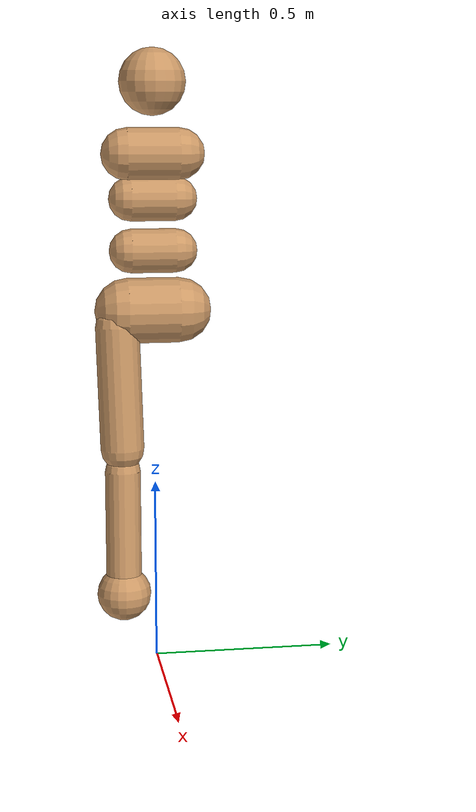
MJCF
<mujoco model="humanoid">
    <compiler angle="degree" inertiafromgeom="true"/>
    <default>
        <joint armature="1" damping="1" limited="true"/>
        <geom conaffinity="1" condim="1" contype="1" margin="0.001" material="geom" rgba="0.8 0.6 .4 1"/>
        <motor ctrllimited="true" ctrlrange="-.4 .4"/>
    </default>
    <option integrator="RK4" iterations="50" solver="PGS" timestep="0.003">
    </option>
    <size nkey="5" nuser_geom="1"/>
    <visual>
        <map fogend="5" fogstart="3"/>
    </visual>
    <asset>
        <texture builtin="gradient" height="100" rgb1=".4 .5 .6" rgb2="0 0 0" type="skybox" width="100"/>
        <texture builtin="flat" height="1278" mark="cross" markrgb="1 1 1" name="texgeom" random="0.01" rgb1="0.8 0.6 0.4" rgb2="0.8 0.6 0.4" type="cube" width="127"/>
        <texture builtin="checker" height="100" name="texplane" rgb1="0 0 0" rgb2="0.8 0.8 0.8" type="2d" width="100"/>
        <material name="MatPlane" reflectance="0.5" shininess="1" specular="1" texrepeat="60 60" texture="texplane"/>
        <material name="geom" texture="texgeom" texuniform="true"/>
    </asset>
    <worldbody>
        <light cutoff="100" diffuse="1 1 1" dir="-0 0 -1.3" directional="true" exponent="1" pos="0 0 1.3" specular=".1 .1 .1"/>
        <body name="torso" pos="0 0 1.4">
            <joint armature="0" damping="0" limited="false" name="root" pos="0 0 0" stiffness="0" type="free"/>
            <geom fromto="0 -.07 0 0 .07 0" name="torso1" size="0.07" type="capsule"/>
            <geom name="head" pos="0 0 .19" size=".09" type="sphere" user="258"/>
            <geom fromto="-.01 -.06 -.12 -.01 .06 -.12" name="uwaist" size="0.06" type="capsule"/>            <body name="lwaist" pos="-.01 0 -0.260" quat="1.000 0 -0.002 0">
                <joint armature="0.02" axis="0 0 1" damping="5" name="abdomen_z" pos="0 0 0.065" range="-45 45" stiffness="20" type="hinge"/>
                <joint armature="0.02" axis="0 1 0" damping="5" name="abdomen_y" pos="0 0 0.065" range="-75 30" stiffness="10" type="hinge"/>
                <geom fromto="0 -.06 0 0 .06 0" name="lwaist" size="0.06" type="capsule"/>
                <body name="pelvis" pos="0 0 -0.165" quat="1.000 0 -0.002 0">
                    <joint armature="0.02" axis="1 0 0" damping="5" name="abdomen_x" pos="0 0 0.1" range="-35 35" stiffness="10" type="hinge"/>
                    <geom fromto="-.02 -.07 0 -.02 .07 0" name="butt" size="0.09" type="capsule"/>
                    <body name="right_thigh" pos="0 -0.1 -0.04">
                        <joint armature="0.01" axis="1 0 0" damping="5" name="right_hip_x" pos="0 0 0" range="-25 5" stiffness="10" type="hinge"/>
                        <joint armature="0.01" axis="0 0 1" damping="5" name="right_hip_z" pos="0 0 0" range="-60 35" stiffness="10" type="hinge"/>
                        <joint armature="0.0080" axis="0 1 0" damping="5" name="right_hip_y" pos="0 0 0" range="-110 20" stiffness="20" type="hinge"/>
                        <geom fromto="0 0 0 0 0.01 -.34" name="right_thigh1" size="0.06" type="capsule"/>
                        <body name="right_shin" pos="0 0.01 -0.403">
                            <joint armature="0.0060" axis="0 -1 0" name="right_knee" pos="0 0 .02" range="-160 -2" type="hinge"/>
                            <geom fromto="0 0 0 0 0 -.3" name="right_shin1" size="0.049" type="capsule"/>
                            <body name="right_foot" pos="0 0 -0.45">
                                <geom name="right_foot" pos="0 0 0.1" size="0.075" type="sphere" user="0"/>
                            </body>
                        </body>
                    </body>
                </body>
            </body>
        </body>
    </worldbody>

    <actuator>
        <motor gear="100" joint="abdomen_y" name="abdomen_y"/>
        <motor gear="100" joint="abdomen_z" name="abdomen_z"/>
        <motor gear="100" joint="abdomen_x" name="abdomen_x"/>
        <motor gear="100" joint="right_hip_x" name="right_hip_x"/>
        <motor gear="100" joint="right_hip_z" name="right_hip_z"/>
        <motor gear="300" joint="right_hip_y" name="right_hip_y"/>
        <motor gear="200" joint="right_knee" name="right_knee"/>
    </actuator>
</mujoco>
